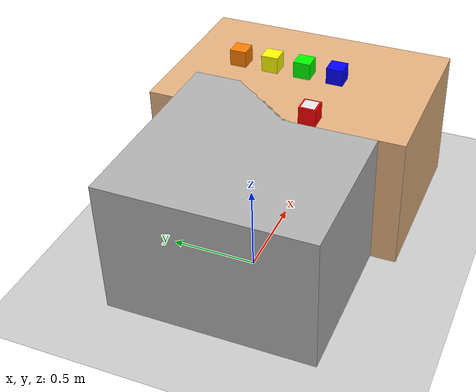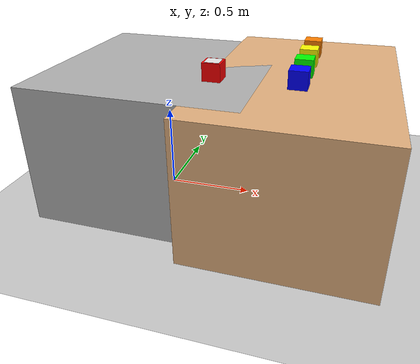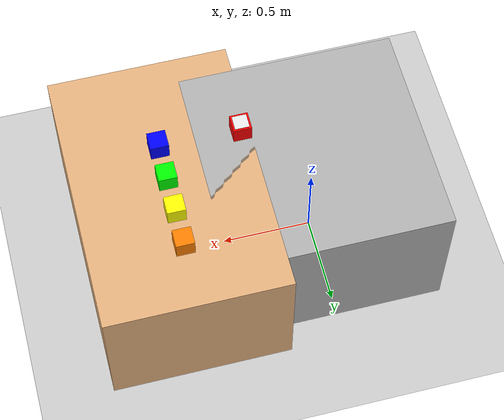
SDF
<?xml version="1.0" ?>
<sdf version="1.8">
  <world name="nextage_workspace">

    <!-- Physics -->
    <physics name="1ms" type="ignored">
      <max_step_size>0.001</max_step_size>
      <real_time_factor>1.0</real_time_factor>
    </physics>

    <!-- Plugins -->
    <plugin filename="libignition-gazebo-physics-system.so" name="ignition::gazebo::systems::Physics">
    </plugin>
    <plugin filename="libignition-gazebo-user-commands-system.so" name="ignition::gazebo::systems::UserCommands">
    </plugin>
    <plugin filename="libignition-gazebo-scene-broadcaster-system.so" name="ignition::gazebo::systems::SceneBroadcaster">
    </plugin>
    <plugin filename="libignition-gazebo-sensors-system.so" name="ignition::gazebo::systems::Sensors">
      <render_engine>ogre2</render_engine>
    </plugin>

    <!-- Lighting -->
    <light type="directional" name="sun">
      <cast_shadows>true</cast_shadows>
      <pose>0 0 10 0 0 0</pose>
      <diffuse>0.8 0.8 0.8 1</diffuse>
      <specular>0.2 0.2 0.2 1</specular>
      <attenuation>
        <range>1000</range>
        <constant>0.9</constant>
        <linear>0.01</linear>
        <quadratic>0.001</quadratic>
      </attenuation>
      <direction>-0.5 0.1 -0.9</direction>
    </light>

    <!-- Ground Plane -->
    <model name="ground_plane">
      <static>true</static>
      <link name="link">
        <collision name="collision">
          <geometry>
            <plane>
              <normal>0 0 1</normal>
            </plane>
          </geometry>
        </collision>
        <visual name="visual">
          <geometry>
            <plane>
              <normal>0 0 1</normal>
              <size>100 100</size>
            </plane>
          </geometry>
          <material>
            <ambient>0.8 0.8 0.8 1</ambient>
            <diffuse>0.8 0.8 0.8 1</diffuse>
            <specular>0.8 0.8 0.8 1</specular>
          </material>
        </visual>
      </link>
    </model>

    <!-- Robot Table (where robot stands) -->
    <model name="robot_table">
      <static>true</static>
      <pose>0 0 0.4 0 0 0</pose>
      <link name="link">
        <collision name="surface">
          <geometry>
            <box>
              <size>1.2 1.2 0.8</size>
            </box>
          </geometry>
        </collision>
        <visual name="visual">
          <geometry>
            <box>
              <size>1.2 1.2 0.8</size>
            </box>
          </geometry>
          <material>
            <ambient>0.5 0.5 0.5 1</ambient>
            <diffuse>0.7 0.7 0.7 1</diffuse>
          </material>
        </visual>
      </link>
    </model>

    <!-- Work Table (where objects are placed) -->
    <model name="work_table">
      <static>true</static>
      <pose>0.8 0 0.4 0 0 0</pose>
      <link name="link">
        <collision name="surface">
          <geometry>
            <box>
              <size>1.0 1.5 0.8</size>
            </box>
          </geometry>
        </collision>
        <visual name="visual">
          <geometry>
            <box>
              <size>1.0 1.5 0.8</size>
            </box>
          </geometry>
          <material>
            <ambient>0.8 0.6 0.4 1</ambient>
            <diffuse>0.9 0.7 0.5 1</diffuse>
          </material>
        </visual>
      </link>
    </model>

    <!-- Colored Cubes on Work Table -->

    <!-- Red Cube - MOVED CLOSER to be within arm reach -->
    <model name="red_cube">
      <pose>0.35 -0.2 0.85 0 0 0</pose>
      <link name="link">
        <inertial>
          <mass>0.2</mass>
          <inertia>
            <ixx>0.00033</ixx>
            <ixy>0</ixy>
            <ixz>0</ixz>
            <iyy>0.00033</iyy>
            <iyz>0</iyz>
            <izz>0.00033</izz>
          </inertia>
        </inertial>
        <collision name="collision">
          <geometry>
            <box>
              <size>0.1 0.1 0.1</size>
            </box>
          </geometry>
          <surface>
            <friction>
              <ode>
                <mu>2.0</mu>
                <mu2>2.0</mu2>
                <fdir1>0 0 1</fdir1>
                <slip1>0.0</slip1>
                <slip2>0.0</slip2>
              </ode>
            </friction>
            <contact>
              <ode>
                <soft_cfm>0.001</soft_cfm>
                <soft_erp>0.5</soft_erp>
                <kp>1e8</kp>
                <kd>100.0</kd>
                <max_vel>1.0</max_vel>
                <min_depth>0.0005</min_depth>
              </ode>
            </contact>
          </surface>
        </collision>
        <visual name="visual">
          <geometry>
            <box>
              <size>0.1 0.1 0.1</size>
            </box>
          </geometry>
          <material>
            <ambient>1 0 0 1</ambient>
            <diffuse>1 0 0 1</diffuse>
          </material>
        </visual>
        <!-- Visual marker on top face -->
        <visual name="marker">
          <pose>0 0 0.051 0 0 0</pose>
          <geometry>
            <box>
              <size>0.08 0.08 0.002</size>
            </box>
          </geometry>
          <material>
            <ambient>0 0 0 1</ambient>
            <diffuse>1 1 1 1</diffuse>
            <script>
              <uri>file://media/materials/scripts/gazebo.material</uri>
              <name>Gazebo/White</name>
            </script>
          </material>
        </visual>
      </link>
    </model>

    <!-- Blue Cube -->
    <model name="blue_cube">
      <pose>0.8 -0.2 0.85 0 0 0</pose>
      <link name="link">
        <inertial>
          <mass>0.5</mass>
          <inertia>
            <ixx>0.00208</ixx>
            <ixy>0</ixy>
            <ixz>0</ixz>
            <iyy>0.00208</iyy>
            <iyz>0</iyz>
            <izz>0.00208</izz>
          </inertia>
        </inertial>
        <collision name="collision">
          <geometry>
            <box>
              <size>0.1 0.1 0.1</size>
            </box>
          </geometry>
        </collision>
        <visual name="visual">
          <geometry>
            <box>
              <size>0.1 0.1 0.1</size>
            </box>
          </geometry>
          <material>
            <ambient>0 0 1 1</ambient>
            <diffuse>0 0 1 1</diffuse>
          </material>
        </visual>
      </link>
    </model>

    <!-- Green Cube -->
    <model name="green_cube">
      <pose>0.8 0 0.85 0 0 0</pose>
      <link name="link">
        <inertial>
          <mass>0.5</mass>
          <inertia>
            <ixx>0.00208</ixx>
            <ixy>0</ixy>
            <ixz>0</ixz>
            <iyy>0.00208</iyy>
            <iyz>0</iyz>
            <izz>0.00208</izz>
          </inertia>
        </inertial>
        <collision name="collision">
          <geometry>
            <box>
              <size>0.1 0.1 0.1</size>
            </box>
          </geometry>
        </collision>
        <visual name="visual">
          <geometry>
            <box>
              <size>0.1 0.1 0.1</size>
            </box>
          </geometry>
          <material>
            <ambient>0 1 0 1</ambient>
            <diffuse>0 1 0 1</diffuse>
          </material>
        </visual>
      </link>
    </model>

    <!-- Yellow Cube -->
    <model name="yellow_cube">
      <pose>0.8 0.2 0.85 0 0 0</pose>
      <link name="link">
        <inertial>
          <mass>0.5</mass>
          <inertia>
            <ixx>0.00208</ixx>
            <ixy>0</ixy>
            <ixz>0</ixz>
            <iyy>0.00208</iyy>
            <iyz>0</iyz>
            <izz>0.00208</izz>
          </inertia>
        </inertial>
        <collision name="collision">
          <geometry>
            <box>
              <size>0.1 0.1 0.1</size>
            </box>
          </geometry>
        </collision>
        <visual name="visual">
          <geometry>
            <box>
              <size>0.1 0.1 0.1</size>
            </box>
          </geometry>
          <material>
            <ambient>1 1 0 1</ambient>
            <diffuse>1 1 0 1</diffuse>
          </material>
        </visual>
      </link>
    </model>

    <!-- Orange Cube -->
    <model name="orange_cube">
      <pose>0.8 0.4 0.85 0 0 0</pose>
      <link name="link">
        <inertial>
          <mass>0.5</mass>
          <inertia>
            <ixx>0.00208</ixx>
            <ixy>0</ixy>
            <ixz>0</ixz>
            <iyy>0.00208</iyy>
            <iyz>0</iyz>
            <izz>0.00208</izz>
          </inertia>
        </inertial>
        <collision name="collision">
          <geometry>
            <box>
              <size>0.1 0.1 0.1</size>
            </box>
          </geometry>
        </collision>
        <visual name="visual">
          <geometry>
            <box>
              <size>0.1 0.1 0.1</size>
            </box>
          </geometry>
          <material>
            <ambient>1 0.5 0 1</ambient>
            <diffuse>1 0.5 0 1</diffuse>
          </material>
        </visual>
      </link>
    </model>

  </world>
</sdf>
